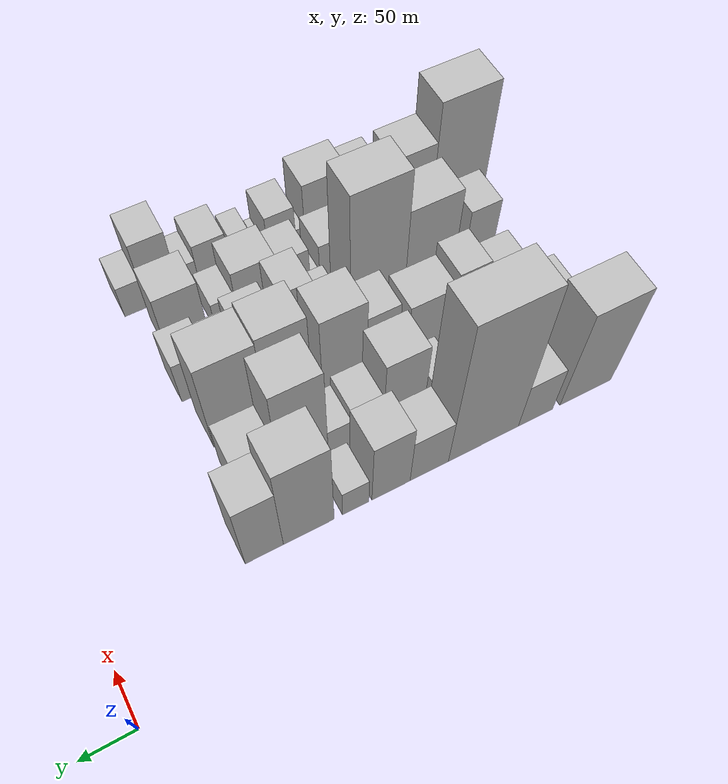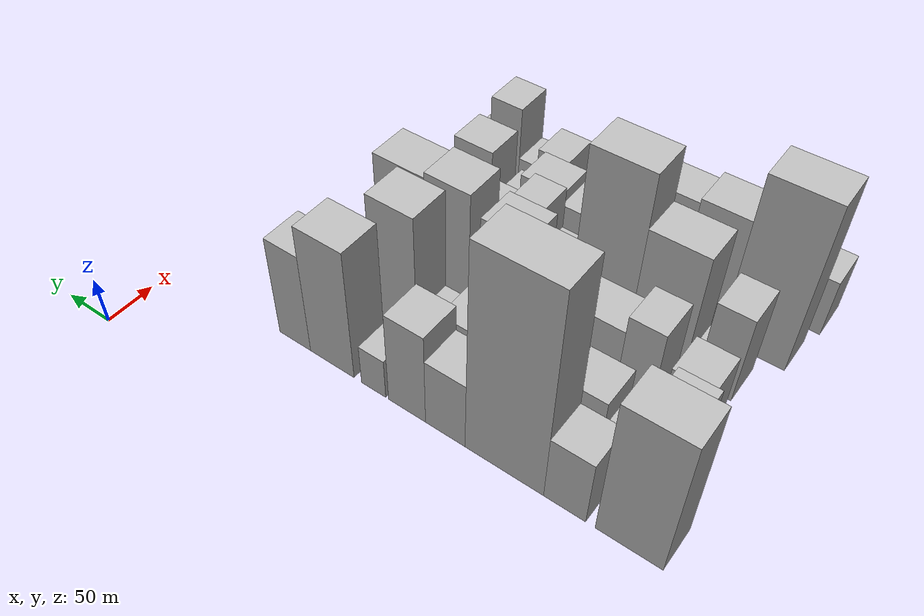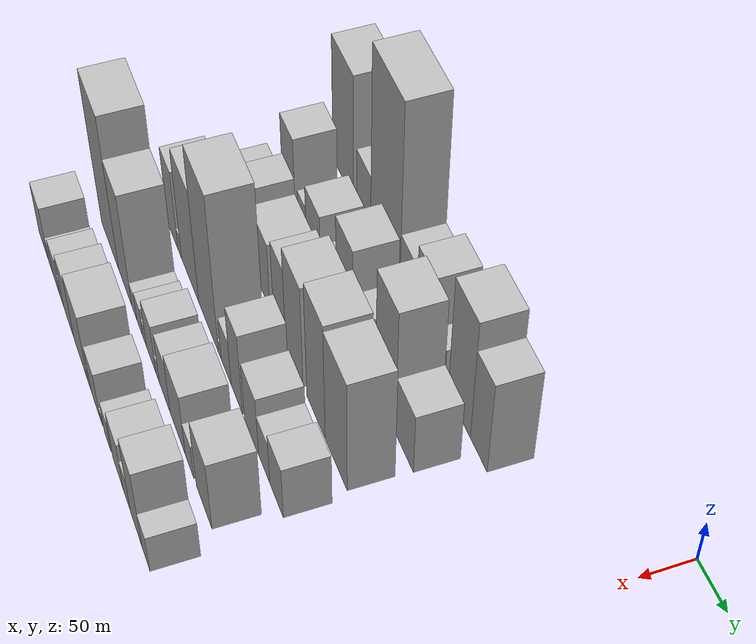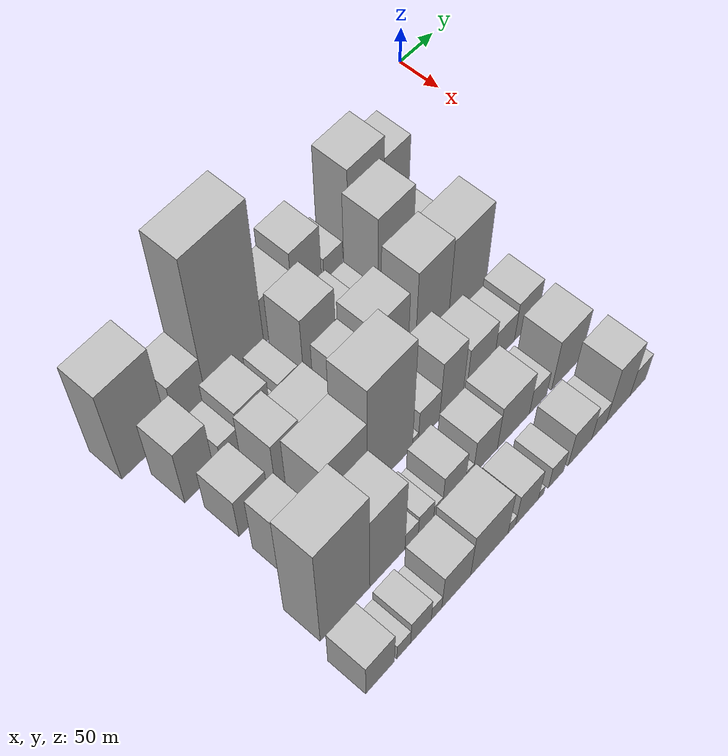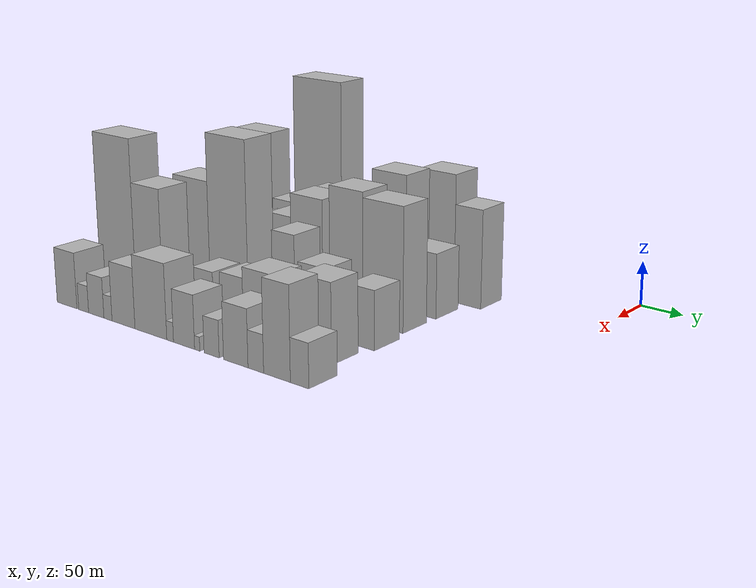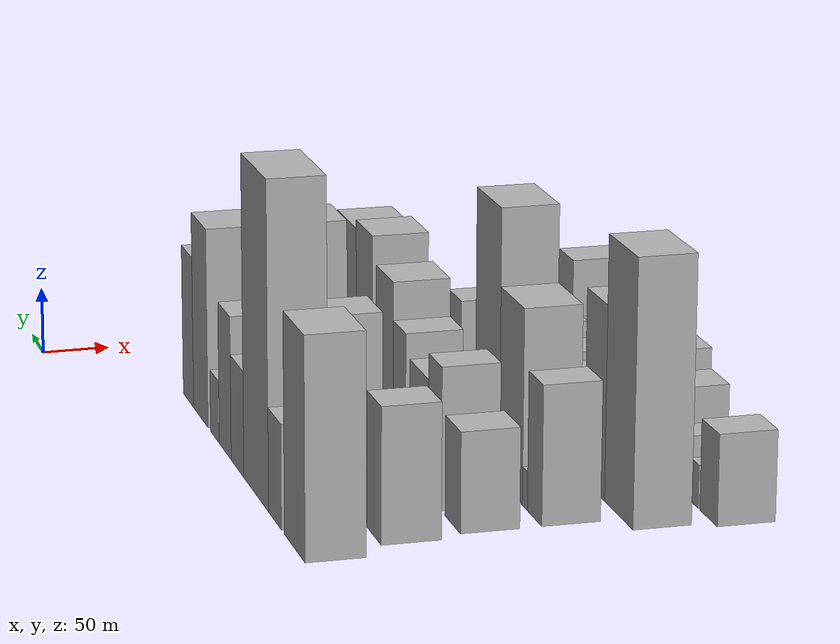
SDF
<sdf version="1.6">
 <world name="default">
  <model name="building_11">
   <static>1</static>
   <pose>100.0000 -470.6556 0 0.000000 0.000000 0.000000</pose>
   <link name="link">
    <pose>0 0 75.00 0 0 0</pose>
    <collision name="collision"><geometry><box><size>40.0000 56.2600 150.0000</size></box></geometry></collision>
    <visual name="visual">
     <cast_shadows>0</cast_shadows>
     <geometry><box><size>40.0000 56.2600 150.0000</size></box></geometry>
     <material>
      <script>
       <uri>model://HANNAS_wall/materials/scripts</uri>
       <uri>model://HANNAS_wall/materials/textures</uri>
       <name>vrc/HANNAS_wall</name>
      </script>
     </material>
    </visual>
   </link>
  </model>
  <model name="building_12">
   <static>1</static>
   <pose>100.0000 -416.0842 0 0.000000 0.000000 0.000000</pose>
   <link name="link">
    <pose>0 0 36.00 0 0 0</pose>
    <collision name="collision"><geometry><box><size>40.0000 36.8828 72.0000</size></box></geometry></collision>
    <visual name="visual">
     <cast_shadows>0</cast_shadows>
     <geometry><box><size>40.0000 36.8828 72.0000</size></box></geometry>
     <material>
      <script>
       <uri>model://HANNAS_wall/materials/scripts</uri>
       <uri>model://HANNAS_wall/materials/textures</uri>
       <name>vrc/HANNAS_wall</name>
      </script>
     </material>
    </visual>
   </link>
  </model>
  <model name="building_13">
   <static>1</static>
   <pose>100.0000 -361.1440 0 0.000000 0.000000 0.000000</pose>
   <link name="link">
    <pose>0 0 112.50 0 0 0</pose>
    <collision name="collision"><geometry><box><size>40.0000 72.9977 225.0000</size></box></geometry></collision>
    <visual name="visual">
     <cast_shadows>0</cast_shadows>
     <geometry><box><size>40.0000 72.9977 225.0000</size></box></geometry>
     <material>
      <script>
       <uri>model://HANNAS_wall/materials/scripts</uri>
       <uri>model://HANNAS_wall/materials/textures</uri>
       <name>vrc/HANNAS_wall</name>
      </script>
     </material>
    </visual>
   </link>
  </model>
  <model name="building_14">
   <static>1</static>
   <pose>100.0000 -305.2426 0 0.000000 0.000000 0.000000</pose>
   <link name="link">
    <pose>0 0 37.50 0 0 0</pose>
    <collision name="collision"><geometry><box><size>40.0000 38.8052 75.0000</size></box></geometry></collision>
    <visual name="visual">
     <cast_shadows>0</cast_shadows>
     <geometry><box><size>40.0000 38.8052 75.0000</size></box></geometry>
     <material>
      <script>
       <uri>model://HANNAS_wall/materials/scripts</uri>
       <uri>model://HANNAS_wall/materials/textures</uri>
       <name>vrc/HANNAS_wall</name>
      </script>
     </material>
    </visual>
   </link>
  </model>
  <model name="building_15">
   <static>1</static>
   <pose>100.0000 -266.9520 0 0.000000 0.000000 0.000000</pose>
   <link name="link">
    <pose>0 0 51.00 0 0 0</pose>
    <collision name="collision"><geometry><box><size>40.0000 37.7759 102.0000</size></box></geometry></collision>
    <visual name="visual">
     <cast_shadows>0</cast_shadows>
     <geometry><box><size>40.0000 37.7759 102.0000</size></box></geometry>
     <material>
      <script>
       <uri>model://HANNAS_wall/materials/scripts</uri>
       <uri>model://HANNAS_wall/materials/textures</uri>
       <name>vrc/HANNAS_wall</name>
      </script>
     </material>
    </visual>
   </link>
  </model>
  <model name="building_16">
   <static>1</static>
   <pose>100.0000 -232.2471 0 0.000000 0.000000 0.000000</pose>
   <link name="link">
    <pose>0 0 22.50 0 0 0</pose>
    <collision name="collision"><geometry><box><size>40.0000 25.6339 45.0000</size></box></geometry></collision>
    <visual name="visual">
     <cast_shadows>0</cast_shadows>
     <geometry><box><size>40.0000 25.6339 45.0000</size></box></geometry>
     <material>
      <script>
       <uri>model://HANNAS_wall/materials/scripts</uri>
       <uri>model://HANNAS_wall/materials/textures</uri>
       <name>vrc/HANNAS_wall</name>
      </script>
     </material>
    </visual>
   </link>
  </model>
  <model name="building_17">
   <static>1</static>
   <pose>100.0000 -187.3344 0 0.000000 0.000000 0.000000</pose>
   <link name="link">
    <pose>0 0 72.00 0 0 0</pose>
    <collision name="collision"><geometry><box><size>40.0000 48.1916 144.0000</size></box></geometry></collision>
    <visual name="visual">
     <cast_shadows>0</cast_shadows>
     <geometry><box><size>40.0000 48.1916 144.0000</size></box></geometry>
     <material>
      <script>
       <uri>model://HANNAS_wall/materials/scripts</uri>
       <uri>model://HANNAS_wall/materials/textures</uri>
       <name>vrc/HANNAS_wall</name>
      </script>
     </material>
    </visual>
   </link>
  </model>
  <model name="building_18">
   <static>1</static>
   <pose>100.0000 -145.5339 0 0.000000 0.000000 0.000000</pose>
   <link name="link">
    <pose>0 0 55.50 0 0 0</pose>
    <collision name="collision"><geometry><box><size>40.0000 35.4094 111.0000</size></box></geometry></collision>
    <visual name="visual">
     <cast_shadows>0</cast_shadows>
     <geometry><box><size>40.0000 35.4094 111.0000</size></box></geometry>
     <material>
      <script>
       <uri>model://HANNAS_wall/materials/scripts</uri>
       <uri>model://HANNAS_wall/materials/textures</uri>
       <name>vrc/HANNAS_wall</name>
      </script>
     </material>
    </visual>
   </link>
  </model>
  <model name="building_57">
   <static>1</static>
   <pose>155.0000 -461.0031 0 0.000000 0.000000 0.000000</pose>
   <link name="link">
    <pose>0 0 46.50 0 0 0</pose>
    <collision name="collision"><geometry><box><size>40.0000 35.7607 93.0000</size></box></geometry></collision>
    <visual name="visual">
     <cast_shadows>0</cast_shadows>
     <geometry><box><size>40.0000 35.7607 93.0000</size></box></geometry>
     <material>
      <script>
       <uri>model://HANNAS_wall/materials/scripts</uri>
       <uri>model://HANNAS_wall/materials/textures</uri>
       <name>vrc/HANNAS_wall</name>
      </script>
     </material>
    </visual>
   </link>
  </model>
  <model name="building_58">
   <static>1</static>
   <pose>155.0000 -423.8890 0 0.000000 0.000000 0.000000</pose>
   <link name="link">
    <pose>0 0 19.50 0 0 0</pose>
    <collision name="collision"><geometry><box><size>40.0000 22.4674 39.0000</size></box></geometry></collision>
    <visual name="visual">
     <cast_shadows>0</cast_shadows>
     <geometry><box><size>40.0000 22.4674 39.0000</size></box></geometry>
     <material>
      <script>
       <uri>model://HANNAS_wall/materials/scripts</uri>
       <uri>model://HANNAS_wall/materials/textures</uri>
       <name>vrc/HANNAS_wall</name>
      </script>
     </material>
    </visual>
   </link>
  </model>
  <model name="building_59">
   <static>1</static>
   <pose>155.0000 -393.2065 0 0.000000 0.000000 0.000000</pose>
   <link name="link">
    <pose>0 0 33.00 0 0 0</pose>
    <collision name="collision"><geometry><box><size>40.0000 38.8976 66.0000</size></box></geometry></collision>
    <visual name="visual">
     <cast_shadows>0</cast_shadows>
     <geometry><box><size>40.0000 38.8976 66.0000</size></box></geometry>
     <material>
      <script>
       <uri>model://HANNAS_wall/materials/scripts</uri>
       <uri>model://HANNAS_wall/materials/textures</uri>
       <name>vrc/HANNAS_wall</name>
      </script>
     </material>
    </visual>
   </link>
  </model>
  <model name="building_60">
   <static>1</static>
   <pose>155.0000 -368.1533 0 0.000000 0.000000 0.000000</pose>
   <link name="link">
    <pose>0 0 12.00 0 0 0</pose>
    <collision name="collision"><geometry><box><size>40.0000 11.2090 24.0000</size></box></geometry></collision>
    <visual name="visual">
     <cast_shadows>0</cast_shadows>
     <geometry><box><size>40.0000 11.2090 24.0000</size></box></geometry>
     <material>
      <script>
       <uri>model://HANNAS_wall/materials/scripts</uri>
       <uri>model://HANNAS_wall/materials/textures</uri>
       <name>vrc/HANNAS_wall</name>
      </script>
     </material>
    </visual>
   </link>
  </model>
  <model name="building_61">
   <static>1</static>
   <pose>155.0000 -349.9706 0 0.000000 0.000000 0.000000</pose>
   <link name="link">
    <pose>0 0 22.50 0 0 0</pose>
    <collision name="collision"><geometry><box><size>40.0000 25.1565 45.0000</size></box></geometry></collision>
    <visual name="visual">
     <cast_shadows>0</cast_shadows>
     <geometry><box><size>40.0000 25.1565 45.0000</size></box></geometry>
     <material>
      <script>
       <uri>model://HANNAS_wall/materials/scripts</uri>
       <uri>model://HANNAS_wall/materials/textures</uri>
       <name>vrc/HANNAS_wall</name>
      </script>
     </material>
    </visual>
   </link>
  </model>
  <model name="building_62">
   <static>1</static>
   <pose>155.0000 -310.4826 0 0.000000 0.000000 0.000000</pose>
   <link name="link">
    <pose>0 0 55.50 0 0 0</pose>
    <collision name="collision"><geometry><box><size>40.0000 41.8194 111.0000</size></box></geometry></collision>
    <visual name="visual">
     <cast_shadows>0</cast_shadows>
     <geometry><box><size>40.0000 41.8194 111.0000</size></box></geometry>
     <material>
      <script>
       <uri>model://HANNAS_wall/materials/scripts</uri>
       <uri>model://HANNAS_wall/materials/textures</uri>
       <name>vrc/HANNAS_wall</name>
      </script>
     </material>
    </visual>
   </link>
  </model>
  <model name="building_63">
   <static>1</static>
   <pose>155.0000 -273.8621 0 0.000000 0.000000 0.000000</pose>
   <link name="link">
    <pose>0 0 30.00 0 0 0</pose>
    <collision name="collision"><geometry><box><size>40.0000 31.4216 60.0000</size></box></geometry></collision>
    <visual name="visual">
     <cast_shadows>0</cast_shadows>
     <geometry><box><size>40.0000 31.4216 60.0000</size></box></geometry>
     <material>
      <script>
       <uri>model://HANNAS_wall/materials/scripts</uri>
       <uri>model://HANNAS_wall/materials/textures</uri>
       <name>vrc/HANNAS_wall</name>
      </script>
     </material>
    </visual>
   </link>
  </model>
  <model name="building_64">
   <static>1</static>
   <pose>155.0000 -246.2517 0 0.000000 0.000000 0.000000</pose>
   <link name="link">
    <pose>0 0 22.50 0 0 0</pose>
    <collision name="collision"><geometry><box><size>40.0000 23.7992 45.0000</size></box></geometry></collision>
    <visual name="visual">
     <cast_shadows>0</cast_shadows>
     <geometry><box><size>40.0000 23.7992 45.0000</size></box></geometry>
     <material>
      <script>
       <uri>model://HANNAS_wall/materials/scripts</uri>
       <uri>model://HANNAS_wall/materials/textures</uri>
       <name>vrc/HANNAS_wall</name>
      </script>
     </material>
    </visual>
   </link>
  </model>
  <model name="building_65">
   <static>1</static>
   <pose>155.0000 -210.8631 0 0.000000 0.000000 0.000000</pose>
   <link name="link">
    <pose>0 0 75.00 0 0 0</pose>
    <collision name="collision"><geometry><box><size>40.0000 46.9781 150.0000</size></box></geometry></collision>
    <visual name="visual">
     <cast_shadows>0</cast_shadows>
     <geometry><box><size>40.0000 46.9781 150.0000</size></box></geometry>
     <material>
      <script>
       <uri>model://HANNAS_wall/materials/scripts</uri>
       <uri>model://HANNAS_wall/materials/textures</uri>
       <name>vrc/HANNAS_wall</name>
      </script>
     </material>
    </visual>
   </link>
  </model>
  <model name="building_66">
   <static>1</static>
   <pose>155.0000 -167.2524 0 0.000000 0.000000 0.000000</pose>
   <link name="link">
    <pose>0 0 36.00 0 0 0</pose>
    <collision name="collision"><geometry><box><size>40.0000 40.2433 72.0000</size></box></geometry></collision>
    <visual name="visual">
     <cast_shadows>0</cast_shadows>
     <geometry><box><size>40.0000 40.2433 72.0000</size></box></geometry>
     <material>
      <script>
       <uri>model://HANNAS_wall/materials/scripts</uri>
       <uri>model://HANNAS_wall/materials/textures</uri>
       <name>vrc/HANNAS_wall</name>
      </script>
     </material>
    </visual>
   </link>
  </model>
  <model name="building_107">
   <static>1</static>
   <pose>210.0000 -452.4430 0 0.000000 0.000000 0.000000</pose>
   <link name="link">
    <pose>0 0 34.50 0 0 0</pose>
    <collision name="collision"><geometry><box><size>40.0000 36.5233 69.0000</size></box></geometry></collision>
    <visual name="visual">
     <cast_shadows>0</cast_shadows>
     <geometry><box><size>40.0000 36.5233 69.0000</size></box></geometry>
     <material>
      <script>
       <uri>model://HANNAS_wall/materials/scripts</uri>
       <uri>model://HANNAS_wall/materials/textures</uri>
       <name>vrc/HANNAS_wall</name>
      </script>
     </material>
    </visual>
   </link>
  </model>
  <model name="building_108">
   <static>1</static>
   <pose>210.0000 -409.1220 0 0.000000 0.000000 0.000000</pose>
   <link name="link">
    <pose>0 0 49.50 0 0 0</pose>
    <collision name="collision"><geometry><box><size>40.0000 32.1188 99.0000</size></box></geometry></collision>
    <visual name="visual">
     <cast_shadows>0</cast_shadows>
     <geometry><box><size>40.0000 32.1188 99.0000</size></box></geometry>
     <material>
      <script>
       <uri>model://HANNAS_wall/materials/scripts</uri>
       <uri>model://HANNAS_wall/materials/textures</uri>
       <name>vrc/HANNAS_wall</name>
      </script>
     </material>
    </visual>
   </link>
  </model>
  <model name="building_109">
   <static>1</static>
   <pose>210.0000 -369.2467 0 0.000000 0.000000 0.000000</pose>
   <link name="link">
    <pose>0 0 40.50 0 0 0</pose>
    <collision name="collision"><geometry><box><size>40.0000 47.6317 81.0000</size></box></geometry></collision>
    <visual name="visual">
     <cast_shadows>0</cast_shadows>
     <geometry><box><size>40.0000 47.6317 81.0000</size></box></geometry>
     <material>
      <script>
       <uri>model://HANNAS_wall/materials/scripts</uri>
       <uri>model://HANNAS_wall/materials/textures</uri>
       <name>vrc/HANNAS_wall</name>
      </script>
     </material>
    </visual>
   </link>
  </model>
  <model name="building_110">
   <static>1</static>
   <pose>210.0000 -319.0658 0 0.000000 0.000000 0.000000</pose>
   <link name="link">
    <pose>0 0 48.00 0 0 0</pose>
    <collision name="collision"><geometry><box><size>40.0000 32.7301 96.0000</size></box></geometry></collision>
    <visual name="visual">
     <cast_shadows>0</cast_shadows>
     <geometry><box><size>40.0000 32.7301 96.0000</size></box></geometry>
     <material>
      <script>
       <uri>model://HANNAS_wall/materials/scripts</uri>
       <uri>model://HANNAS_wall/materials/textures</uri>
       <name>vrc/HANNAS_wall</name>
      </script>
     </material>
    </visual>
   </link>
  </model>
  <model name="building_111">
   <static>1</static>
   <pose>210.0000 -280.0023 0 0.000000 0.000000 0.000000</pose>
   <link name="link">
    <pose>0 0 61.50 0 0 0</pose>
    <collision name="collision"><geometry><box><size>40.0000 45.3967 123.0000</size></box></geometry></collision>
    <visual name="visual">
     <cast_shadows>0</cast_shadows>
     <geometry><box><size>40.0000 45.3967 123.0000</size></box></geometry>
     <material>
      <script>
       <uri>model://HANNAS_wall/materials/scripts</uri>
       <uri>model://HANNAS_wall/materials/textures</uri>
       <name>vrc/HANNAS_wall</name>
      </script>
     </material>
    </visual>
   </link>
  </model>
  <model name="building_112">
   <static>1</static>
   <pose>210.0000 -224.4421 0 0.000000 0.000000 0.000000</pose>
   <link name="link">
    <pose>0 0 70.50 0 0 0</pose>
    <collision name="collision"><geometry><box><size>40.0000 45.7238 141.0000</size></box></geometry></collision>
    <visual name="visual">
     <cast_shadows>0</cast_shadows>
     <geometry><box><size>40.0000 45.7238 141.0000</size></box></geometry>
     <material>
      <script>
       <uri>model://HANNAS_wall/materials/scripts</uri>
       <uri>model://HANNAS_wall/materials/textures</uri>
       <name>vrc/HANNAS_wall</name>
      </script>
     </material>
    </visual>
   </link>
  </model>
  <model name="building_113">
   <static>1</static>
   <pose>210.0000 -175.0037 0 0.000000 0.000000 0.000000</pose>
   <link name="link">
    <pose>0 0 67.50 0 0 0</pose>
    <collision name="collision"><geometry><box><size>40.0000 53.1530 135.0000</size></box></geometry></collision>
    <visual name="visual">
     <cast_shadows>0</cast_shadows>
     <geometry><box><size>40.0000 53.1530 135.0000</size></box></geometry>
     <material>
      <script>
       <uri>model://HANNAS_wall/materials/scripts</uri>
       <uri>model://HANNAS_wall/materials/textures</uri>
       <name>vrc/HANNAS_wall</name>
      </script>
     </material>
    </visual>
   </link>
  </model>
  <model name="building_158">
   <static>1</static>
   <pose>265.0000 -454.2577 0 0.000000 0.000000 0.000000</pose>
   <link name="link">
    <pose>0 0 48.00 0 0 0</pose>
    <collision name="collision"><geometry><box><size>40.0000 32.2401 96.0000</size></box></geometry></collision>
    <visual name="visual">
     <cast_shadows>0</cast_shadows>
     <geometry><box><size>40.0000 32.2401 96.0000</size></box></geometry>
     <material>
      <script>
       <uri>model://HANNAS_wall/materials/scripts</uri>
       <uri>model://HANNAS_wall/materials/textures</uri>
       <name>vrc/HANNAS_wall</name>
      </script>
     </material>
    </visual>
   </link>
  </model>
  <model name="building_159">
   <static>1</static>
   <pose>265.0000 -432.4400 0 0.000000 0.000000 0.000000</pose>
   <link name="link">
    <pose>0 0 13.50 0 0 0</pose>
    <collision name="collision"><geometry><box><size>40.0000 11.3954 27.0000</size></box></geometry></collision>
    <visual name="visual">
     <cast_shadows>0</cast_shadows>
     <geometry><box><size>40.0000 11.3954 27.0000</size></box></geometry>
     <material>
      <script>
       <uri>model://HANNAS_wall/materials/scripts</uri>
       <uri>model://HANNAS_wall/materials/textures</uri>
       <name>vrc/HANNAS_wall</name>
      </script>
     </material>
    </visual>
   </link>
  </model>
  <model name="building_160">
   <static>1</static>
   <pose>265.0000 -399.8887 0 0.000000 0.000000 0.000000</pose>
   <link name="link">
    <pose>0 0 67.50 0 0 0</pose>
    <collision name="collision"><geometry><box><size>40.0000 53.7071 135.0000</size></box></geometry></collision>
    <visual name="visual">
     <cast_shadows>0</cast_shadows>
     <geometry><box><size>40.0000 53.7071 135.0000</size></box></geometry>
     <material>
      <script>
       <uri>model://HANNAS_wall/materials/scripts</uri>
       <uri>model://HANNAS_wall/materials/textures</uri>
       <name>vrc/HANNAS_wall</name>
      </script>
     </material>
    </visual>
   </link>
  </model>
  <model name="building_161">
   <static>1</static>
   <pose>265.0000 -344.0162 0 0.000000 0.000000 0.000000</pose>
   <link name="link">
    <pose>0 0 94.50 0 0 0</pose>
    <collision name="collision"><geometry><box><size>40.0000 58.0380 189.0000</size></box></geometry></collision>
    <visual name="visual">
     <cast_shadows>0</cast_shadows>
     <geometry><box><size>40.0000 58.0380 189.0000</size></box></geometry>
     <material>
      <script>
       <uri>model://HANNAS_wall/materials/scripts</uri>
       <uri>model://HANNAS_wall/materials/textures</uri>
       <name>vrc/HANNAS_wall</name>
      </script>
     </material>
    </visual>
   </link>
  </model>
  <model name="building_162">
   <static>1</static>
   <pose>265.0000 -311.0620 0 0.000000 0.000000 0.000000</pose>
   <link name="link">
    <pose>0 0 9.00 0 0 0</pose>
    <collision name="collision"><geometry><box><size>40.0000 7.8705 18.0000</size></box></geometry></collision>
    <visual name="visual">
     <cast_shadows>0</cast_shadows>
     <geometry><box><size>40.0000 7.8705 18.0000</size></box></geometry>
     <material>
      <script>
       <uri>model://HANNAS_wall/materials/scripts</uri>
       <uri>model://HANNAS_wall/materials/textures</uri>
       <name>vrc/HANNAS_wall</name>
      </script>
     </material>
    </visual>
   </link>
  </model>
  <model name="building_163">
   <static>1</static>
   <pose>265.0000 -292.9831 0 0.000000 0.000000 0.000000</pose>
   <link name="link">
    <pose>0 0 27.00 0 0 0</pose>
    <collision name="collision"><geometry><box><size>40.0000 28.2871 54.0000</size></box></geometry></collision>
    <visual name="visual">
     <cast_shadows>0</cast_shadows>
     <geometry><box><size>40.0000 28.2871 54.0000</size></box></geometry>
     <material>
      <script>
       <uri>model://HANNAS_wall/materials/scripts</uri>
       <uri>model://HANNAS_wall/materials/textures</uri>
       <name>vrc/HANNAS_wall</name>
      </script>
     </material>
    </visual>
   </link>
  </model>
  <model name="building_164">
   <static>1</static>
   <pose>265.0000 -263.0312 0 0.000000 0.000000 0.000000</pose>
   <link name="link">
    <pose>0 0 49.50 0 0 0</pose>
    <collision name="collision"><geometry><box><size>40.0000 31.6168 99.0000</size></box></geometry></collision>
    <visual name="visual">
     <cast_shadows>0</cast_shadows>
     <geometry><box><size>40.0000 31.6168 99.0000</size></box></geometry>
     <material>
      <script>
       <uri>model://HANNAS_wall/materials/scripts</uri>
       <uri>model://HANNAS_wall/materials/textures</uri>
       <name>vrc/HANNAS_wall</name>
      </script>
     </material>
    </visual>
   </link>
  </model>
  <model name="building_165">
   <static>1</static>
   <pose>265.0000 -223.3060 0 0.000000 0.000000 0.000000</pose>
   <link name="link">
    <pose>0 0 36.00 0 0 0</pose>
    <collision name="collision"><geometry><box><size>40.0000 37.8335 72.0000</size></box></geometry></collision>
    <visual name="visual">
     <cast_shadows>0</cast_shadows>
     <geometry><box><size>40.0000 37.8335 72.0000</size></box></geometry>
     <material>
      <script>
       <uri>model://HANNAS_wall/materials/scripts</uri>
       <uri>model://HANNAS_wall/materials/textures</uri>
       <name>vrc/HANNAS_wall</name>
      </script>
     </material>
    </visual>
   </link>
  </model>
  <model name="building_166">
   <static>1</static>
   <pose>265.0000 -189.9415 0 0.000000 0.000000 0.000000</pose>
   <link name="link">
    <pose>0 0 25.50 0 0 0</pose>
    <collision name="collision"><geometry><box><size>40.0000 28.8956 51.0000</size></box></geometry></collision>
    <visual name="visual">
     <cast_shadows>0</cast_shadows>
     <geometry><box><size>40.0000 28.8956 51.0000</size></box></geometry>
     <material>
      <script>
       <uri>model://HANNAS_wall/materials/scripts</uri>
       <uri>model://HANNAS_wall/materials/textures</uri>
       <name>vrc/HANNAS_wall</name>
      </script>
     </material>
    </visual>
   </link>
  </model>
  <model name="building_167">
   <static>1</static>
   <pose>265.0000 -158.4079 0 0.000000 0.000000 0.000000</pose>
   <link name="link">
    <pose>0 0 31.50 0 0 0</pose>
    <collision name="collision"><geometry><box><size>40.0000 34.1716 63.0000</size></box></geometry></collision>
    <visual name="visual">
     <cast_shadows>0</cast_shadows>
     <geometry><box><size>40.0000 34.1716 63.0000</size></box></geometry>
     <material>
      <script>
       <uri>model://HANNAS_wall/materials/scripts</uri>
       <uri>model://HANNAS_wall/materials/textures</uri>
       <name>vrc/HANNAS_wall</name>
      </script>
     </material>
    </visual>
   </link>
  </model>
  <model name="building_205">
   <static>1</static>
   <pose>320.0000 -462.1281 0 0.000000 0.000000 0.000000</pose>
   <link name="link">
    <pose>0 0 91.50 0 0 0</pose>
    <collision name="collision"><geometry><box><size>40.0000 59.6102 183.0000</size></box></geometry></collision>
    <visual name="visual">
     <cast_shadows>0</cast_shadows>
     <geometry><box><size>40.0000 59.6102 183.0000</size></box></geometry>
     <material>
      <script>
       <uri>model://HANNAS_wall/materials/scripts</uri>
       <uri>model://HANNAS_wall/materials/textures</uri>
       <name>vrc/HANNAS_wall</name>
      </script>
     </material>
    </visual>
   </link>
  </model>
  <model name="building_206">
   <static>1</static>
   <pose>320.0000 -410.5010 0 0.000000 0.000000 0.000000</pose>
   <link name="link">
    <pose>0 0 67.50 0 0 0</pose>
    <collision name="collision"><geometry><box><size>40.0000 43.6441 135.0000</size></box></geometry></collision>
    <visual name="visual">
     <cast_shadows>0</cast_shadows>
     <geometry><box><size>40.0000 43.6441 135.0000</size></box></geometry>
     <material>
      <script>
       <uri>model://HANNAS_wall/materials/scripts</uri>
       <uri>model://HANNAS_wall/materials/textures</uri>
       <name>vrc/HANNAS_wall</name>
      </script>
     </material>
    </visual>
   </link>
  </model>
  <model name="building_207">
   <static>1</static>
   <pose>320.0000 -380.1932 0 0.000000 0.000000 0.000000</pose>
   <link name="link">
    <pose>0 0 15.00 0 0 0</pose>
    <collision name="collision"><geometry><box><size>40.0000 16.9715 30.0000</size></box></geometry></collision>
    <visual name="visual">
     <cast_shadows>0</cast_shadows>
     <geometry><box><size>40.0000 16.9715 30.0000</size></box></geometry>
     <material>
      <script>
       <uri>model://HANNAS_wall/materials/scripts</uri>
       <uri>model://HANNAS_wall/materials/textures</uri>
       <name>vrc/HANNAS_wall</name>
      </script>
     </material>
    </visual>
   </link>
  </model>
  <model name="building_208">
   <static>1</static>
   <pose>320.0000 -361.9000 0 0.000000 0.000000 0.000000</pose>
   <link name="link">
    <pose>0 0 18.00 0 0 0</pose>
    <collision name="collision"><geometry><box><size>40.0000 19.6149 36.0000</size></box></geometry></collision>
    <visual name="visual">
     <cast_shadows>0</cast_shadows>
     <geometry><box><size>40.0000 19.6149 36.0000</size></box></geometry>
     <material>
      <script>
       <uri>model://HANNAS_wall/materials/scripts</uri>
       <uri>model://HANNAS_wall/materials/textures</uri>
       <name>vrc/HANNAS_wall</name>
      </script>
     </material>
    </visual>
   </link>
  </model>
  <model name="building_209">
   <static>1</static>
   <pose>320.0000 -346.5589 0 0.000000 0.000000 0.000000</pose>
   <link name="link">
    <pose>0 0 12.00 0 0 0</pose>
    <collision name="collision"><geometry><box><size>40.0000 11.0671 24.0000</size></box></geometry></collision>
    <visual name="visual">
     <cast_shadows>0</cast_shadows>
     <geometry><box><size>40.0000 11.0671 24.0000</size></box></geometry>
     <material>
      <script>
       <uri>model://HANNAS_wall/materials/scripts</uri>
       <uri>model://HANNAS_wall/materials/textures</uri>
       <name>vrc/HANNAS_wall</name>
      </script>
     </material>
    </visual>
   </link>
  </model>
  <model name="building_210">
   <static>1</static>
   <pose>320.0000 -325.9659 0 0.000000 0.000000 0.000000</pose>
   <link name="link">
    <pose>0 0 30.00 0 0 0</pose>
    <collision name="collision"><geometry><box><size>40.0000 30.1189 60.0000</size></box></geometry></collision>
    <visual name="visual">
     <cast_shadows>0</cast_shadows>
     <geometry><box><size>40.0000 30.1189 60.0000</size></box></geometry>
     <material>
      <script>
       <uri>model://HANNAS_wall/materials/scripts</uri>
       <uri>model://HANNAS_wall/materials/textures</uri>
       <name>vrc/HANNAS_wall</name>
      </script>
     </material>
    </visual>
   </link>
  </model>
  <model name="building_211">
   <static>1</static>
   <pose>320.0000 -305.8011 0 0.000000 0.000000 0.000000</pose>
   <link name="link">
    <pose>0 0 12.00 0 0 0</pose>
    <collision name="collision"><geometry><box><size>40.0000 10.2108 24.0000</size></box></geometry></collision>
    <visual name="visual">
     <cast_shadows>0</cast_shadows>
     <geometry><box><size>40.0000 10.2108 24.0000</size></box></geometry>
     <material>
      <script>
       <uri>model://HANNAS_wall/materials/scripts</uri>
       <uri>model://HANNAS_wall/materials/textures</uri>
       <name>vrc/HANNAS_wall</name>
      </script>
     </material>
    </visual>
   </link>
  </model>
  <model name="building_212">
   <static>1</static>
   <pose>320.0000 -284.2668 0 0.000000 0.000000 0.000000</pose>
   <link name="link">
    <pose>0 0 31.50 0 0 0</pose>
    <collision name="collision"><geometry><box><size>40.0000 32.8578 63.0000</size></box></geometry></collision>
    <visual name="visual">
     <cast_shadows>0</cast_shadows>
     <geometry><box><size>40.0000 32.8578 63.0000</size></box></geometry>
     <material>
      <script>
       <uri>model://HANNAS_wall/materials/scripts</uri>
       <uri>model://HANNAS_wall/materials/textures</uri>
       <name>vrc/HANNAS_wall</name>
      </script>
     </material>
    </visual>
   </link>
  </model>
  <model name="building_213">
   <static>1</static>
   <pose>320.0000 -245.7694 0 0.000000 0.000000 0.000000</pose>
   <link name="link">
    <pose>0 0 37.50 0 0 0</pose>
    <collision name="collision"><geometry><box><size>40.0000 44.1370 75.0000</size></box></geometry></collision>
    <visual name="visual">
     <cast_shadows>0</cast_shadows>
     <geometry><box><size>40.0000 44.1370 75.0000</size></box></geometry>
     <material>
      <script>
       <uri>model://HANNAS_wall/materials/scripts</uri>
       <uri>model://HANNAS_wall/materials/textures</uri>
       <name>vrc/HANNAS_wall</name>
      </script>
     </material>
    </visual>
   </link>
  </model>
  <model name="building_214">
   <static>1</static>
   <pose>320.0000 -211.6838 0 0.000000 0.000000 0.000000</pose>
   <link name="link">
    <pose>0 0 21.00 0 0 0</pose>
    <collision name="collision"><geometry><box><size>40.0000 24.0341 42.0000</size></box></geometry></collision>
    <visual name="visual">
     <cast_shadows>0</cast_shadows>
     <geometry><box><size>40.0000 24.0341 42.0000</size></box></geometry>
     <material>
      <script>
       <uri>model://HANNAS_wall/materials/scripts</uri>
       <uri>model://HANNAS_wall/materials/textures</uri>
       <name>vrc/HANNAS_wall</name>
      </script>
     </material>
    </visual>
   </link>
  </model>
  <model name="building_215">
   <static>1</static>
   <pose>320.0000 -171.2712 0 0.000000 0.000000 0.000000</pose>
   <link name="link">
    <pose>0 0 42.00 0 0 0</pose>
    <collision name="collision"><geometry><box><size>40.0000 42.7910 84.0000</size></box></geometry></collision>
    <visual name="visual">
     <cast_shadows>0</cast_shadows>
     <geometry><box><size>40.0000 42.7910 84.0000</size></box></geometry>
     <material>
      <script>
       <uri>model://HANNAS_wall/materials/scripts</uri>
       <uri>model://HANNAS_wall/materials/textures</uri>
       <name>vrc/HANNAS_wall</name>
      </script>
     </material>
    </visual>
   </link>
  </model>
  <model name="building_258">
   <static>1</static>
   <pose>375.0000 -482.5865 0 0.000000 0.000000 0.000000</pose>
   <link name="link">
    <pose>0 0 31.50 0 0 0</pose>
    <collision name="collision"><geometry><box><size>40.0000 34.1318 63.0000</size></box></geometry></collision>
    <visual name="visual">
     <cast_shadows>0</cast_shadows>
     <geometry><box><size>40.0000 34.1318 63.0000</size></box></geometry>
     <material>
      <script>
       <uri>model://HANNAS_wall/materials/scripts</uri>
       <uri>model://HANNAS_wall/materials/textures</uri>
       <name>vrc/HANNAS_wall</name>
      </script>
     </material>
    </visual>
   </link>
  </model>
  <model name="building_259">
   <static>1</static>
   <pose>375.0000 -454.2059 0 0.000000 0.000000 0.000000</pose>
   <link name="link">
    <pose>0 0 15.00 0 0 0</pose>
    <collision name="collision"><geometry><box><size>40.0000 16.6295 30.0000</size></box></geometry></collision>
    <visual name="visual">
     <cast_shadows>0</cast_shadows>
     <geometry><box><size>40.0000 16.6295 30.0000</size></box></geometry>
     <material>
      <script>
       <uri>model://HANNAS_wall/materials/scripts</uri>
       <uri>model://HANNAS_wall/materials/textures</uri>
       <name>vrc/HANNAS_wall</name>
      </script>
     </material>
    </visual>
   </link>
  </model>
  <model name="building_260">
   <static>1</static>
   <pose>375.0000 -433.1906 0 0.000000 0.000000 0.000000</pose>
   <link name="link">
    <pose>0 0 22.50 0 0 0</pose>
    <collision name="collision"><geometry><box><size>40.0000 25.4011 45.0000</size></box></geometry></collision>
    <visual name="visual">
     <cast_shadows>0</cast_shadows>
     <geometry><box><size>40.0000 25.4011 45.0000</size></box></geometry>
     <material>
      <script>
       <uri>model://HANNAS_wall/materials/scripts</uri>
       <uri>model://HANNAS_wall/materials/textures</uri>
       <name>vrc/HANNAS_wall</name>
      </script>
     </material>
    </visual>
   </link>
  </model>
  <model name="building_261">
   <static>1</static>
   <pose>375.0000 -413.9034 0 0.000000 0.000000 0.000000</pose>
   <link name="link">
    <pose>0 0 13.50 0 0 0</pose>
    <collision name="collision"><geometry><box><size>40.0000 13.1733 27.0000</size></box></geometry></collision>
    <visual name="visual">
     <cast_shadows>0</cast_shadows>
     <geometry><box><size>40.0000 13.1733 27.0000</size></box></geometry>
     <material>
      <script>
       <uri>model://HANNAS_wall/materials/scripts</uri>
       <uri>model://HANNAS_wall/materials/textures</uri>
       <name>vrc/HANNAS_wall</name>
      </script>
     </material>
    </visual>
   </link>
  </model>
  <model name="building_262">
   <static>1</static>
   <pose>375.0000 -389.0372 0 0.000000 0.000000 0.000000</pose>
   <link name="link">
    <pose>0 0 33.00 0 0 0</pose>
    <collision name="collision"><geometry><box><size>40.0000 36.5590 66.0000</size></box></geometry></collision>
    <visual name="visual">
     <cast_shadows>0</cast_shadows>
     <geometry><box><size>40.0000 36.5590 66.0000</size></box></geometry>
     <material>
      <script>
       <uri>model://HANNAS_wall/materials/scripts</uri>
       <uri>model://HANNAS_wall/materials/textures</uri>
       <name>vrc/HANNAS_wall</name>
      </script>
     </material>
    </visual>
   </link>
  </model>
  <model name="building_263">
   <static>1</static>
   <pose>375.0000 -346.4665 0 0.000000 0.000000 0.000000</pose>
   <link name="link">
    <pose>0 0 40.50 0 0 0</pose>
    <collision name="collision"><geometry><box><size>40.0000 48.5825 81.0000</size></box></geometry></collision>
    <visual name="visual">
     <cast_shadows>0</cast_shadows>
     <geometry><box><size>40.0000 48.5825 81.0000</size></box></geometry>
     <material>
      <script>
       <uri>model://HANNAS_wall/materials/scripts</uri>
       <uri>model://HANNAS_wall/materials/textures</uri>
       <name>vrc/HANNAS_wall</name>
      </script>
     </material>
    </visual>
   </link>
  </model>
  <model name="building_264">
   <static>1</static>
   <pose>375.0000 -317.1693 0 0.000000 0.000000 0.000000</pose>
   <link name="link">
    <pose>0 0 10.50 0 0 0</pose>
    <collision name="collision"><geometry><box><size>40.0000 10.0118 21.0000</size></box></geometry></collision>
    <visual name="visual">
     <cast_shadows>0</cast_shadows>
     <geometry><box><size>40.0000 10.0118 21.0000</size></box></geometry>
     <material>
      <script>
       <uri>model://HANNAS_wall/materials/scripts</uri>
       <uri>model://HANNAS_wall/materials/textures</uri>
       <name>vrc/HANNAS_wall</name>
      </script>
     </material>
    </visual>
   </link>
  </model>
  <model name="building_265">
   <static>1</static>
   <pose>375.0000 -296.7799 0 0.000000 0.000000 0.000000</pose>
   <link name="link">
    <pose>0 0 28.50 0 0 0</pose>
    <collision name="collision"><geometry><box><size>40.0000 30.7671 57.0000</size></box></geometry></collision>
    <visual name="visual">
     <cast_shadows>0</cast_shadows>
     <geometry><box><size>40.0000 30.7671 57.0000</size></box></geometry>
     <material>
      <script>
       <uri>model://HANNAS_wall/materials/scripts</uri>
       <uri>model://HANNAS_wall/materials/textures</uri>
       <name>vrc/HANNAS_wall</name>
      </script>
     </material>
    </visual>
   </link>
  </model>
  <model name="building_266">
   <static>1</static>
   <pose>375.0000 -277.6573 0 0.000000 0.000000 0.000000</pose>
   <link name="link">
    <pose>0 0 7.50 0 0 0</pose>
    <collision name="collision"><geometry><box><size>40.0000 7.4782 15.0000</size></box></geometry></collision>
    <visual name="visual">
     <cast_shadows>0</cast_shadows>
     <geometry><box><size>40.0000 7.4782 15.0000</size></box></geometry>
     <material>
      <script>
       <uri>model://HANNAS_wall/materials/scripts</uri>
       <uri>model://HANNAS_wall/materials/textures</uri>
       <name>vrc/HANNAS_wall</name>
      </script>
     </material>
    </visual>
   </link>
  </model>
  <model name="building_267">
   <static>1</static>
   <pose>375.0000 -257.3240 0 0.000000 0.000000 0.000000</pose>
   <link name="link">
    <pose>0 0 19.50 0 0 0</pose>
    <collision name="collision"><geometry><box><size>40.0000 21.1883 39.0000</size></box></geometry></collision>
    <visual name="visual">
     <cast_shadows>0</cast_shadows>
     <geometry><box><size>40.0000 21.1883 39.0000</size></box></geometry>
     <material>
      <script>
       <uri>model://HANNAS_wall/materials/scripts</uri>
       <uri>model://HANNAS_wall/materials/textures</uri>
       <name>vrc/HANNAS_wall</name>
      </script>
     </material>
    </visual>
   </link>
  </model>
  <model name="building_268">
   <static>1</static>
   <pose>375.0000 -224.1050 0 0.000000 0.000000 0.000000</pose>
   <link name="link">
    <pose>0 0 30.00 0 0 0</pose>
    <collision name="collision"><geometry><box><size>40.0000 33.2497 60.0000</size></box></geometry></collision>
    <visual name="visual">
     <cast_shadows>0</cast_shadows>
     <geometry><box><size>40.0000 33.2497 60.0000</size></box></geometry>
     <material>
      <script>
       <uri>model://HANNAS_wall/materials/scripts</uri>
       <uri>model://HANNAS_wall/materials/textures</uri>
       <name>vrc/HANNAS_wall</name>
      </script>
     </material>
    </visual>
   </link>
  </model>
  <model name="building_269">
   <static>1</static>
   <pose>375.0000 -197.1474 0 0.000000 0.000000 0.000000</pose>
   <link name="link">
    <pose>0 0 19.50 0 0 0</pose>
    <collision name="collision"><geometry><box><size>40.0000 20.6654 39.0000</size></box></geometry></collision>
    <visual name="visual">
     <cast_shadows>0</cast_shadows>
     <geometry><box><size>40.0000 20.6654 39.0000</size></box></geometry>
     <material>
      <script>
       <uri>model://HANNAS_wall/materials/scripts</uri>
       <uri>model://HANNAS_wall/materials/textures</uri>
       <name>vrc/HANNAS_wall</name>
      </script>
     </material>
    </visual>
   </link>
  </model>
  <model name="building_270">
   <static>1</static>
   <pose>375.0000 -169.6537 0 0.000000 0.000000 0.000000</pose>
   <link name="link">
    <pose>0 0 48.00 0 0 0</pose>
    <collision name="collision"><geometry><box><size>40.0000 34.3219 96.0000</size></box></geometry></collision>
    <visual name="visual">
     <cast_shadows>0</cast_shadows>
     <geometry><box><size>40.0000 34.3219 96.0000</size></box></geometry>
     <material>
      <script>
       <uri>model://HANNAS_wall/materials/scripts</uri>
       <uri>model://HANNAS_wall/materials/textures</uri>
       <name>vrc/HANNAS_wall</name>
      </script>
     </material>
    </visual>
   </link>
  </model>
  <model name="building_271">
   <static>1</static>
   <pose>375.0000 -140.9768 0 0.000000 0.000000 0.000000</pose>
   <link name="link">
    <pose>0 0 22.50 0 0 0</pose>
    <collision name="collision"><geometry><box><size>40.0000 23.0320 45.0000</size></box></geometry></collision>
    <visual name="visual">
     <cast_shadows>0</cast_shadows>
     <geometry><box><size>40.0000 23.0320 45.0000</size></box></geometry>
     <material>
      <script>
       <uri>model://HANNAS_wall/materials/scripts</uri>
       <uri>model://HANNAS_wall/materials/textures</uri>
       <name>vrc/HANNAS_wall</name>
      </script>
     </material>
    </visual>
   </link>
  </model>
 </world>
</sdf>
